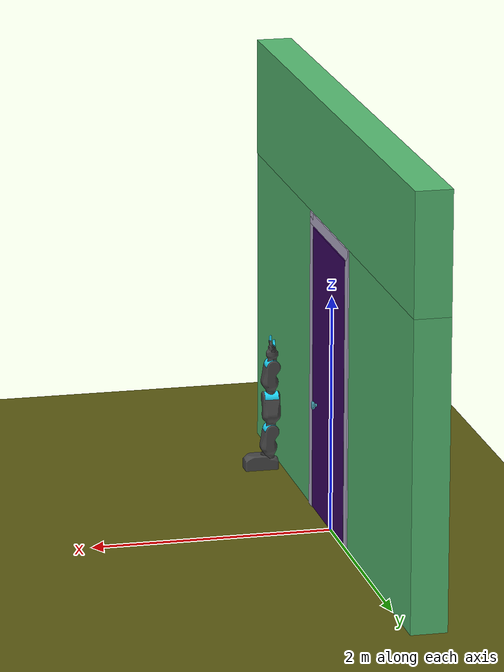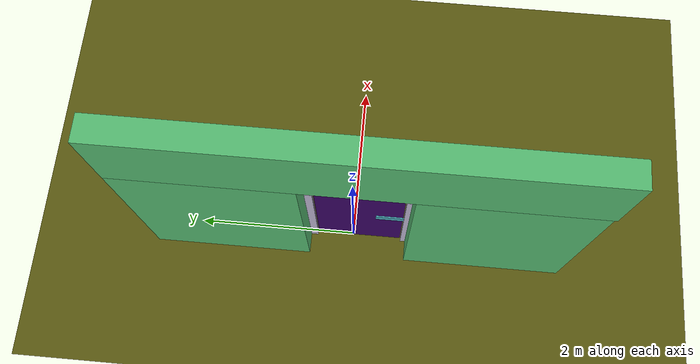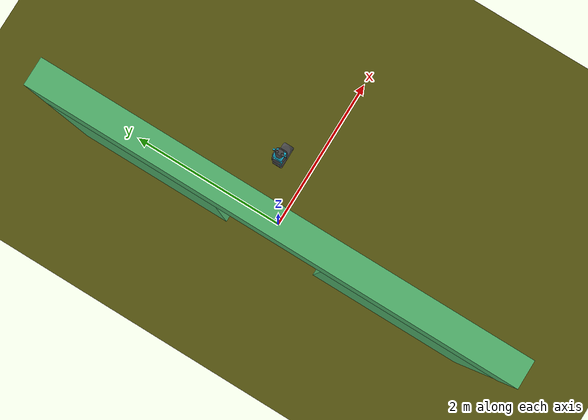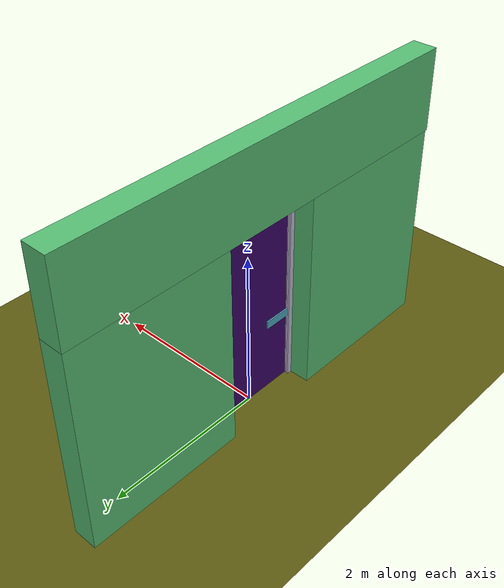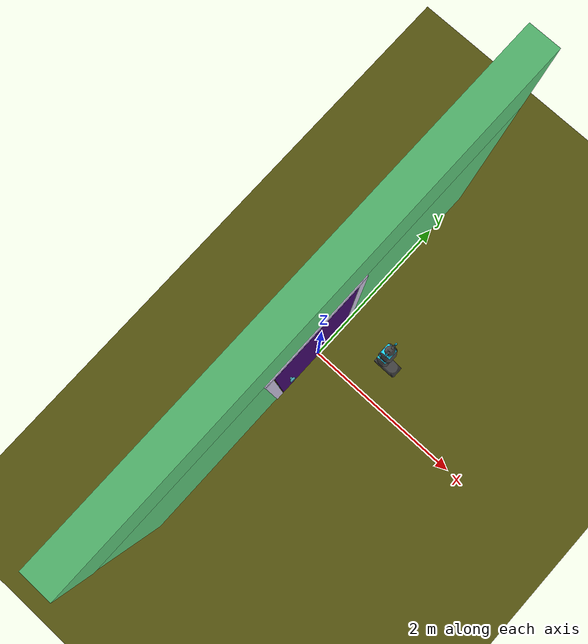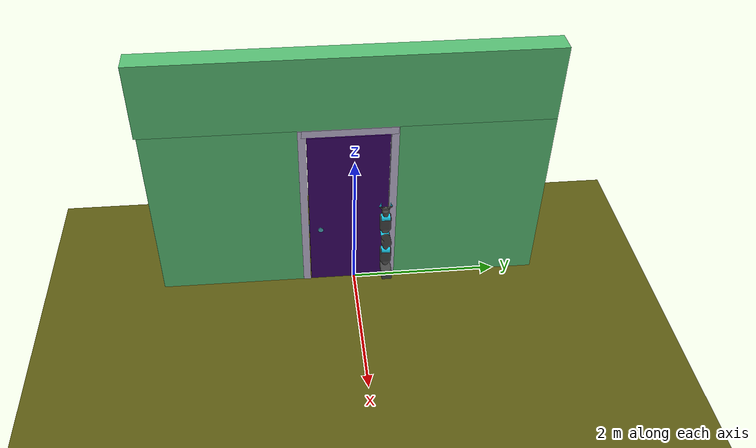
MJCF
<?xml version="1.0" encoding="utf-8"?>
<mujoco model="door_knob">
	<compiler angle="radian"/>
	<include file="../../robot/blue_right_v2_position.xml"/>
	<option gravity="0 0 -9.81" timestep="0.001"/>
	<visual>
		<map fogend="5" fogstart="3" force="0.1" zfar="10" znear="0.01"/>
		<quality shadowsize="2048"/>
		<global offheight="256" offwidth="256"/>
	</visual>
	<asset>
		<mesh file="../../door/roundknobs/1558288447/body_1.stl" name="door_knob_1" scale="0.001 0.001 0.001"/>
		<mesh file="../../door/roundknobs/1558288447/body_2.stl" name="door_knob_2" scale="0.001 0.001 0.001"/>
		<texture builtin="flat" height="32" name="wall_geom" type="2d" width="32"/>
		<texture builtin="flat" height="32" name="frame_geom" type="2d" width="32"/>
		<texture builtin="flat" height="32" name="door_geom" type="2d" width="32"/>
		<texture builtin="flat" height="32" name="knob_geom" type="2d" width="32"/>
		<texture builtin="gradient" height="128" rgb1="0.4 0.6 0.8" rgb2="0 0 0" type="skybox" width="128"/>
		<texture builtin="gradient" height="512" name="texplane" rgb1="0.35 0.39 0.05" rgb2="0.37 0.32 0.09" type="2d" width="512"/>
		<material name="Paint" shininess="0.46" specular="0.14" texture="wall_geom"/>
		<material name="Wood" shininess="0.18" specular="0.11" texture="frame_geom"/>
		<material name="Carpet" shininess="0.02" specular="0.01" texture="door_geom"/>
		<material name="Metal" shininess="0.85" specular="0.97" texture="knob_geom"/>
		<material name="Floor" texture="texplane"/>
	</asset>
	<contact>
		<pair geom1="knob_latch" geom2="door_frame_0" solref="0.01 1"/>
		<pair geom1="knob_latch" geom2="door_frame_1" solref="0.01 1"/>
		<pair geom1="knob_latch" geom2="door_frame_2" solref="0.01 1"/>
		<pair geom1="knob_latch" geom2="door_frame_3" solref="0.01 1"/>
	</contact>
	<default>
		<joint armature="1" damping="1" limited="true"/>
		<default class="wall">
			<geom rgba="0.34 0.74 0.45 1.0" type="mesh"/>
		</default>
		<default class="frame">
			<geom rgba="0.75 0.72 0.83 1.0" type="mesh"/>
		</default>
		<default class="door">
			<geom rgba="0.23 0.02 0.4 1.0" type="mesh"/>
		</default>
		<default class="door_knob">
			<geom condim="4" rgba="0.29 0.66 0.73 1.0" type="mesh"/>
		</default>
		<default class="robot">
			<joint damping="0.09"/>
		</default>
	</default>
	<worldbody>
		<light diffuse="1.0 1.0 0.9" dir="-0.49 0.08 -0.5" directional="true" pos="0.39 -3.83 5.79"/>
		<light diffuse="1.0 0.9 0.9" dir="-0.34 0.33 -0.43" directional="true" pos="4.88 2.5 6.59"/>
		<light diffuse="0.9 1.0 1.0" dir="0.14 0.21 -0.46" directional="true" pos="4.63 4.92 4.96"/>
		<geom material="Floor" name="floor" pos="0 0 -0.05" size="15.0 15.0 0.05" type="plane"/>
		<camera fovy="60" mode="fixed" name="camera1" pos="0.99 -0.5 1.0" euler="0.0 1.57 1.57"/>
		<camera fovy="60" mode="fixed" name="camera2" pos="0.5 0.0 1.99" euler="0 0 0"/>
		<body childclass="wall" name="wall_link" pos="0.0 -0.078 0.0">
			<inertial mass="100" pos="0 0 0" diaginertia="0.0001 0.0001 0.0001"/>
			<geom material="Carpet" name="wall_0" pos="-0.15 -1.5995 1.2675" size="0.15 1.0 1.2675" type="box" euler="0 0 0"/>
			<geom material="Carpet" name="wall_1" pos="-0.15 1.6295 1.2675" size="0.15 1.0 1.2675" type="box" euler="0 0 0"/>
			<geom material="Carpet" name="wall_2" pos="-0.15 0 3.035" size="0.15 2.6295 0.5" type="box" euler="0 0 0"/>
			<body childclass="frame" name="frame_link" pos="0 -0.38123999999999997 0.938">
				<inertial mass="500" pos="0 0 0" diaginertia="0.0001 0.0001 0.0001"/>
				<geom material="Paint" name="door_frame_0" pos="0 -0.20826 0.3295000000000001" size="0.01 0.05 1.2675" type="box" euler="0 0 0"/>
				<geom material="Paint" name="door_frame_1" pos="0 0.9707399999999999 0.3295000000000001" size="0.01 0.05 1.2675" type="box" euler="0 0 0"/>
				<geom material="Paint" name="door_frame_2" pos="0 0.38123999999999997 1.5470000000000002" size="0.01 0.6295 0.05" type="box" euler="0 0 0"/>
				<geom material="Paint" name="door_frame_3" pos="-0.0395 -0.20826 0.3295000000000001" size="0.01 0.05 1.2675" type="box" euler="0 0 0"/>
				<geom material="Paint" name="door_frame_4" pos="-0.0395 0.9707399999999999 0.3295000000000001" size="0.01 0.05 1.2675" type="box" euler="0 0 0"/>
				<geom material="Paint" name="door_frame_5" pos="-0.0395 0.38123999999999997 1.5470000000000002" size="0.01 0.6295 0.05" type="box" euler="0 0 0"/>
				<body childclass="door" name="door_link" pos="0 0 0">
					<joint armature="0.0001" axis="0 0 1" damping="1.8" frictionloss="0" limited="true" name="hinge0" pos="0 0.9107399999999999 0" range="-0.0 1.57" stiffness="0.15" type="hinge"/>
					<geom material="Paint" name="door0" pos="0 0.38123999999999997 0.2795000000000001" size="0.01 0.5295 1.205325" type="box" euler="0 0 0"/>
					<inertial mass="50.4386874" pos="0 0.38123999999999997 0.2795000000000001" diaginertia="29.635696323608702 24.923541814518753 4.71551708824995"/>
					<body childclass="door_knob" name="knob_link" pos="0 0 0">
						<inertial mass="1" pos="0 0 0" diaginertia="0.001 0.001 0.001"/>
						<joint armature="0" axis="0 1 0" damping="30000" frictionloss="0" limited="true" name="target0" range="-0.2 0.3" stiffness="0" type="slide"/>
						<joint armature="0" axis="0 0 1" damping="30000" frictionloss="0" limited="true" name="target1" range="-0.5 0.5" stiffness="0" type="slide"/>
						<joint armature="0.0001" axis="1 0 0" damping="1.77" frictionloss="0" limited="true" name="hinge1" pos="0 0 0" range="-1.3606666666666667 1.3606666666666667" stiffness="1.26" type="hinge"/>
						<body childclass="door_knob" name="roundknob_link" pos="0.01 0 0">
							<geom friction="0.53 0.001 0.003" material="Wood" mesh="door_knob_1" name="door_knob_1" euler="-1.57 1.57 0"/>
							<geom friction="0.53 0.001 0.003" material="Wood" mesh="door_knob_2" name="door_knob_2" euler="-1.57 1.57 0"/>
							<geom material="Wood" name="knob_latch" pos="-0.02975 0 0" size="0.0075 0.18159333333333333 0.05" type="box" euler="0 0 0"/>
							<inertial mass="1" pos="-0.051750000000000004 0 0" diaginertia="0.0029563448925925924 0.00022708333333333337 0.002766761559259259"/>
						</body>
					</body>
				</body>
			</body>
		</body>
	</worldbody>
</mujoco>

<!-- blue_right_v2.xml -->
<mujoco model="blue_descriptions_right">
    <compiler angle="radian" meshdir="../../robot/meshes_blue_v2/"/>
    <size njmax="500" nconmax="100" />

    <default>
        <joint armature="0.04" damping="0.2" limited="true" />
        <geom friction=".5 .1 .1" margin="0.002" condim="3" />
    </default>

    <asset>
        <mesh name="arm_base_link_v2" file="arm_base_link_v2.STL" />
        <mesh name="roll_link_v2" file="roll_link_v2.STL" />
        <mesh name="lift_link_v2" file="lift_link_v2.STL" />
        <mesh name="hand_base_link" file="hand_base_link.STL" />
        <mesh name="finger_limb_link" file="finger_limb_link.STL" />
        <mesh name="finger_tip_link" file="finger_tip_link.STL" />

    </asset>

    <worldbody>

        <body name="robotbase_link" pos="0.6 0.35 0.7">
            <inertial pos="0.107964 -0.000118075 0.0740607" quat="-0.00144458 0.606987 0.000927747 0.79471" mass="3.45161" diaginertia="0.0175534 0.0157386 0.00730286" />
            <geom type="mesh" rgba="0.2784 0.2784 0.2784 1" mesh="arm_base_link_v2" contype="1" conaffinity="28" />
            <body name="robotshoulder_link" pos="0 0 0.083499" quat="0 1 0 0">
                <inertial pos="0.00796478 6.88165e-07 -0.101495" quat="0.712797 -0.021542 -0.0203263 0.700745" mass="2.21396" diaginertia="0.00680774 0.00679994 0.00633497" />
                <joint name="right_base_roll_joint" pos="0 0 0" axis="0 0 1" limited="true" range="-3.3999 2.3412" />
                <geom type="mesh" rgba="0.2784 0.2784 0.2784 1" mesh="roll_link_v2" contype="2" conaffinity="24" />
                <body name="robotshoulder_liftlink" pos="-0.012 0 -0.232779" quat="0.707107 -0.707107 0 0">
                    <inertial pos="-1.3238e-05 0.00162984 3.71222e-05" quat="0.714714 -0.00266942 -0.00304239 0.699405" mass="0.415577" diaginertia="0.000846898 0.000835923 0.000571351" />
                    <joint name="right_shoulder_lift_joint" pos="0 0 0" axis="0 0 -1" limited="true" range="-2.2944 0" />
                    <geom type="mesh" rgba="0.116747 0.862745 1 1" mesh="lift_link_v2" contype="0" />
                    <body name="robotupperarm_link" pos="0 0.0359532 0" quat="0.500704 0.500704 0.499295 -0.499295">
                        <inertial pos="0.00796478 6.88165e-07 -0.101495" quat="0.712797 -0.021542 -0.0203263 0.700745" mass="2.21396" diaginertia="0.00680774 0.00679994 0.00633497" />
                        <joint name="right_shoulder_roll_joint" pos="0 0 0" axis="0 0 1" limited="true" range="-2.6761 2.6761" />
                        <geom type="mesh" rgba="0.2784 0.2784 0.2784 1" mesh="roll_link_v2" contype="4" conaffinity="17" />
                        <body name="robotupperarm_liftlink" pos="-0.012 0 -0.232779" quat="0.707107 -0.707107 0 0">
                            <inertial pos="-1.3238e-05 0.00162984 3.71222e-05" quat="0.714714 -0.00266942 -0.00304239 0.699405" mass="0.415577" diaginertia="0.000846898 0.000835923 0.000571351" />
                            <joint name="right_elbow_lift_joint" pos="0 0 0" axis="0 0 -1" limited="true" range="-2.2944 0" />
                            <geom type="mesh" rgba="0.116747 0.862745 1 1" mesh="lift_link_v2" contype="0" />
                            <body name="robotforearm_link" pos="0 0.0359532 0" quat="0.500704 0.500704 -0.499295 0.499295">
                                <inertial pos="0.00796478 6.88165e-07 -0.101495" quat="0.712797 -0.021542 -0.0203263 0.700745" mass="1.71368" diaginertia="0.00680774 0.00679994 0.00633497" />
                                <joint name="right_elbow_roll_joint" pos="0 0 0" axis="0 0 1" limited="true" range="-2.6761 2.6761" />
                                <geom type="mesh" rgba="0.2784 0.2784 0.2784 1" mesh="roll_link_v2" contype="8" conaffinity="3" />
                                <body name="robotwrist_liftlink" pos="-0.012 0 -0.232779" quat="0.707107 -0.707107 0 0">
                                    <inertial pos="-1.3238e-05 0.00162984 3.71222e-05" quat="0.714714 -0.00266942 -0.00304239 0.699405" mass="0.415577" diaginertia="0.000846898 0.000835923 0.000571351" />
                                    <joint name="right_wrist_lift_joint" pos="0 0 0" axis="0 0 -1" limited="true" range="-2.2944 0" />
                                    <geom type="mesh" rgba="0.116747 0.862745 1 1" mesh="lift_link_v2" contype="0" />
                                    <body name="robotwrist_rolllink" pos="0 0.0701432 0" quat="0.707107 0.707107 0 0">
                                        <inertial pos="0.00526386 2.70692e-05 -0.0641638" quat="0.99991 0.000246685 0.0133803 0.00035395" mass="0.65711" diaginertia="0.00578835 0.00530224 0.0034223" />
                                        <joint name="right_wrist_roll_joint" pos="0 0 0" axis="0 0 1" limited="true" range="-2.6761 2.6761" />
                                        <camera fovy="60" mode="fixed" name="hand_camera" pos="0.06 0 -0.02" euler="0 0 -1.57"/>
                                        <geom type="mesh" rgba="0.2784 0.2784 0.2784 1" mesh="hand_base_link" contype="16" conaffinity="7" />
                                        <body name="right_gripper_link" pos="0 0 -0.1" quat="0.535369 0.498747 0.498747 -0.464631">
                                            <inertial pos="-7.00549e-05 2.51272e-05 -0.0523671" quat="1 5.54202e-05 -0.000544908 -0.000762021" mass="0.00471098" diaginertia="0.000916889 0.000877269 0.000293332" />
                                            <joint name="right_gripper_joint" pos="0 0 0" axis="0 0 1" limited="true" range="0 1.05" />
                                        </body>
                                        <body name="robotfingerlimb_rightlink" pos="0 0.030703 -0.071979" quat="0.631851 -0.317432 -0.631853 0.317432">
                                            <inertial pos="0.000467332 0.0122666 1.16453e-07" quat="0.705809 0.705807 -0.042877 -0.0427953" mass="0.0384621" diaginertia="1.95846e-05 1.92561e-05 5.02091e-06" />
                                            <joint name="right_r_finger_joint" pos="0 0 0" axis="0 0 1" limited="true" range="0 1.1" />
                                            <geom type="mesh" rgba="0.2784 0.2784 0.2784 1" mesh="finger_limb_link" contype="16" conaffinity="7" />
                                            <body name="robotfingertip_rightlink" pos="0 0.06 0" quat="0.222329 0.222329 -0.671246 -0.671244">
                                                <inertial pos="0.000428096 -6.39629e-08 0.016281" quat="0.982245 -0.000139751 0.187603 -0.000716219" mass="0.00964245" diaginertia="1.96342e-06 1.95368e-06 4.76554e-07" />
                                                <joint name="right_r_finger_tip_joint" pos="0 0 0" axis="0 1 0" limited="true" range="-1.1 0" />
                                                <geom name="fingerright2" type="mesh" rgba="0.116747 0.862745 1 1" mesh="finger_tip_link" contype="1" conaffinity="1" />
                                            </body>
                                        </body>
                                        <body name="robotfingerlimb_leftlink" pos="0 -0.030703 -0.071979" quat="0.31743 -0.631852 0.317435 -0.631852">
                                            <inertial pos="0.000467332 0.0122666 1.16453e-07" quat="0.705809 0.705807 -0.042877 -0.0427953" mass="0.0384621" diaginertia="1.95846e-05 1.92561e-05 5.02091e-06" />
                                            <joint name="right_l_finger_joint" pos="0 0 0" axis="0 0 1" limited="true" range="0 1.1"/>
                                            <geom type="mesh" rgba="0.2784 0.2784 0.2784 1" mesh="finger_limb_link" contype="16" conaffinity="7" />
                                            <body name="robotfingertip_leftlink" pos="0 0.06 0" quat="0.222329 0.222329 -0.671246 -0.671244">
                                                <inertial pos="0.000428096 -6.39629e-08 0.016281" quat="0.982245 -0.000139751 0.187603 -0.000716219" mass="0.00964245" diaginertia="1.96342e-06 1.95368e-06 4.76554e-07" />
                                                <joint name="right_l_finger_tip_joint" pos="0 0 0" axis="0 1 0" limited="true" range="-1.1 0" />
                                                <geom name="fingerleft2" type="mesh" rgba="0.116747 0.862745 1 1" mesh="finger_tip_link" contype="1" conaffinity="1" />
                                            </body>
                                        </body>
                                        <body name="right_gripper_finger_link" pos="0 0 -0.18" quat="0.707107 -1.29867e-06 0.707107 -1.29867e-06">
                                            <inertial pos="0 0 -0.18" quat="0.707107 -1.29867e-06 0.707107 -1.29867e-06" mass="0" diaginertia="0 0 0" />
                                        </body>
                                    </body>
                                </body>
                                <body name="right_wrist_accel_link" pos="-0.0200083 -0.00051 -0.111067" quat="0.69759 0.69759 0.115618 -0.115618">
                                    <inertial pos="-0.0200083 -0.00051 -0.111067" quat="0.69759 0.69759 0.115618 -0.115618" mass="0" diaginertia="0 0 0" />
                                </body>
                            </body>
                        </body>
                        <body name="right_elbow_accel_link" pos="-0.0200083 -0.00051 -0.111067" quat="0.69759 0.69759 0.115618 -0.115618">
                            <inertial pos="-0.0200083 -0.00051 -0.111067" quat="0.69759 0.69759 0.115618 -0.115618" mass="0" diaginertia="0 0 0" />
                        </body>
                    </body>
                </body>
                <body name="right_shoulder_accel_link" pos="-0.0200083 -0.00051 -0.111067" quat="0.69759 0.69759 0.115618 -0.115618">
                    <inertial pos="-0.0200083 -0.00051 -0.111067" quat="0.69759 0.69759 0.115618 -0.115618" mass="0" diaginertia="0 0 0" />
                </body>
            </body>
        </body>
    </worldbody>

</mujoco>

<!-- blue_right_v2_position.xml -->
<mujoco model="blue_descriptions_right">
    <include file="../../robot/blue_right_v2.xml"/>
    <actuator>
        <position kp="20.0" gear="1.0" joint="right_base_roll_joint" />
        <position kp="20.0" gear="1.0" joint="right_shoulder_lift_joint" />
        <position kp="20.0" gear="1.0" joint="right_shoulder_roll_joint" />
        <position kp="20.0" gear="1.0" joint="right_elbow_lift_joint" />
        <position kp="20.0" gear="1.0" joint="right_elbow_roll_joint" />
        <position kp="20.0" gear="1.0" joint="right_wrist_lift_joint" />
        <position kp="20.0" gear="1.0" joint="right_wrist_roll_joint" />
        <position ctrllimited="true" kp="1.0" ctrlrange="0 1.05" gear="1.0" joint="right_gripper_joint" />
        <position ctrllimited="true" kp="1.0" ctrlrange="0 1.05" joint="right_r_finger_joint" />
        <position ctrllimited="true" kp="1.0" ctrlrange="-1.05 0" joint="right_r_finger_tip_joint" />
        <position ctrllimited="true" kp="1.0" ctrlrange="0 1.05" joint="right_l_finger_joint" />
        <position ctrllimited="true" kp="1.0" ctrlrange="-1.05 0" joint="right_l_finger_tip_joint" />
    </actuator>

</mujoco>
